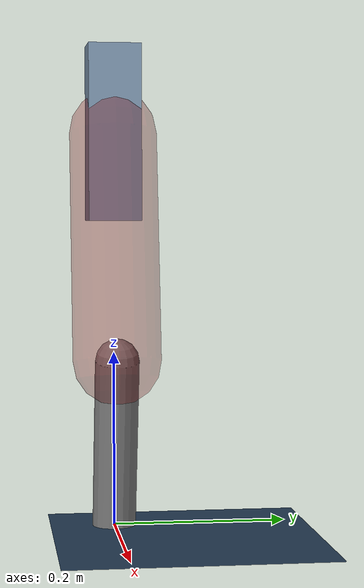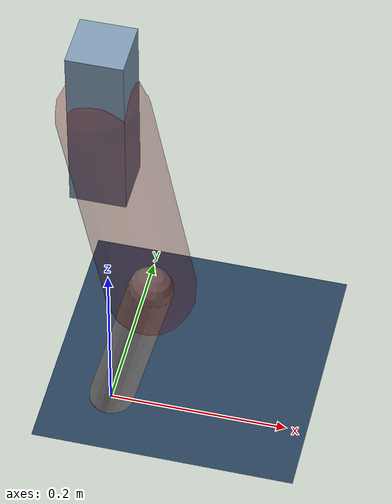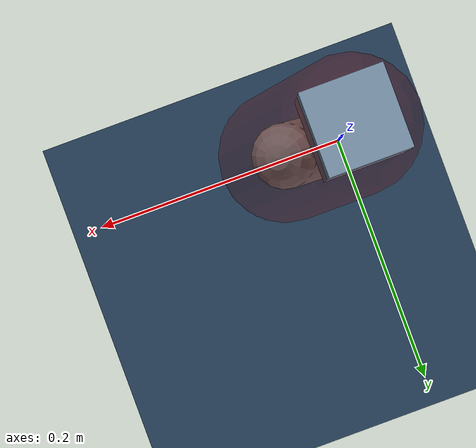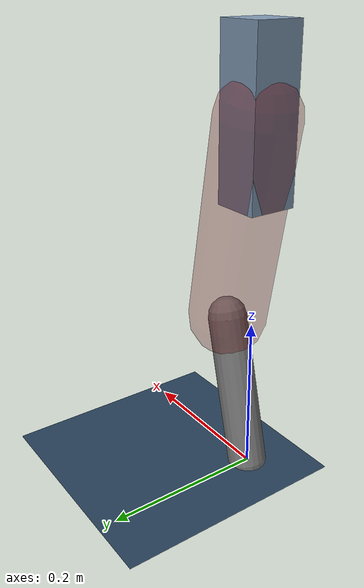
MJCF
<mujoco model="Hopper2D">
	<compiler inertiafromgeom="true" angle="radian" />
	<option timestep="0.001" integrator="implicit" cone="elliptic" solver="Newton" tolerance="1e-10" />

	<default>
		<geom contype="1" conaffinity="1" condim="3" friction="2 0.005 0.0001" solref="0.005 1" />
		<joint limited="true" damping="0.1" />
	</default>

	<asset>
		<texture name="skybox" type="skybox" builtin="gradient" rgb1=".4 .6 .8" rgb2="0 0 0" width="800" height="800" />
		<texture name="grid" type="2d" builtin="checker" rgb1=".1 .2 .3" rgb2=".2 .3 .4" width="300" height="300" mark="edge" markrgb=".2 .3 .4" />
		<material name="ground" texture="grid" texrepeat="1 1" texuniform="true" reflectance="0.1" />
		<material name="leg" rgba="0.5 0.6 0.7 1" />
	</asset>

	<worldbody>

		<geom name="floor" type="plane" size="5 5 0.25" material="ground" />

		<light directional="false" diffuse="0.8 0.8 0.8" specular="0.3 0.3 0.3" pos="0 0 2" dir="0 0 -1" />
		<light mode="targetbodycom" target="base" directional="false" diffuse="0.8 0.8 0.8" specular="0.3 0.3 0.3" pos="0 0 2" dir="0 0 -1" />

		<camera name="fixed" pos="0 -2 1" xyaxes="1 0 0 0 0 1" />
		<camera name="tracking" mode="trackcom" pos="0 -3 1" />

		<body name="root" pos="0 0 0.4518740277651452">
			<joint name="slide_x" type="slide" axis="1 0 0" range="-100 100" />
			<joint name="slide_z" type="slide" axis="0 0 1" range="0 10" />

			<body name="base" pos="0 0 0">
				<geom name="torso" type="box" size="0.03 0.03 0.1" mass="2.9699999999999998" material="leg" />

				<body name="link1" pos="0 0 0" euler="0 1.3887655421261715 0">
					<joint type="hinge" axis="0 -1 0" pos="0 0 0" name="hinge1" limited="true" range="-3.14 3.14" stiffness="0" damping="0.1" />
					<geom name="thigh" type="capsule" fromto="0 0 0 0.26158177506931707 0 0" size="0.05" rgba="0.5 0 0 0.3" mass="0.8865126151802243" />

					<body name="link2" pos="0.26158177506931707 0 0" euler="0 0.4207121477343831 0">
						<joint type="hinge" axis="0 -1 0" pos="0 0 0" name="hinge2" limited="true" range="-3.14 3.14" stiffness="0" damping="0.1" />
						<geom name="shank" type="capsule" fromto="0 0 0 0.2002922526958281 0 0" size="0.025" mass="0.40113380215666244" />

					</body>
				</body>
			</body>
		</body>
	</worldbody>

	<actuator>
		<motor name="torque1" joint="hinge1" ctrlrange="-112.84603722133637 112.84603722133637" ctrllimited="true" gear="1" />
		<motor name="torque2" joint="hinge2" ctrlrange="-79.17757534247868 79.17757534247868" ctrllimited="true" gear="1" />
	</actuator>
</mujoco>
